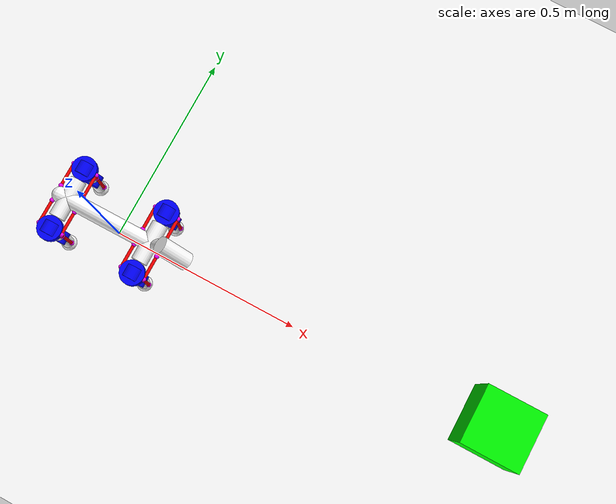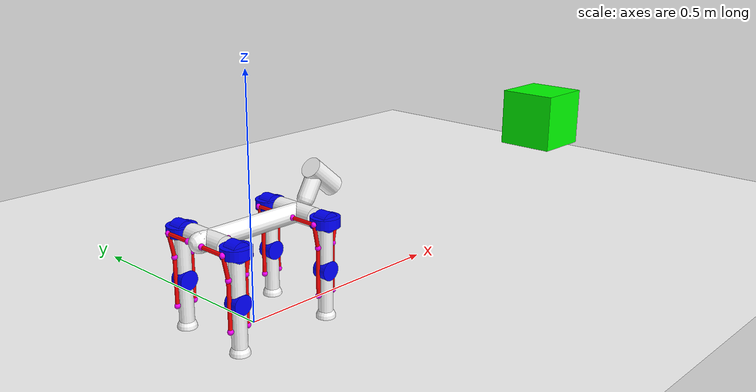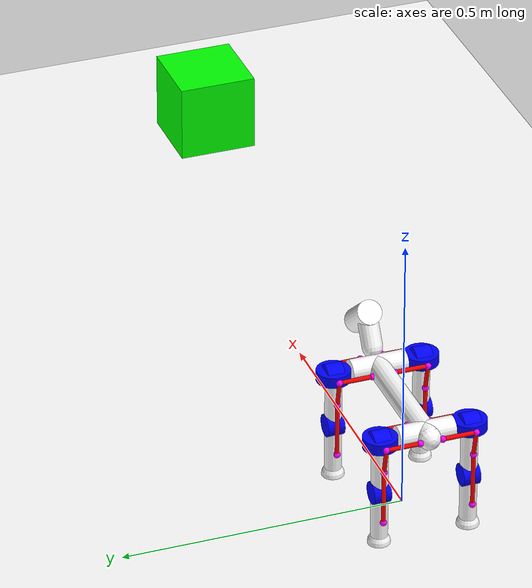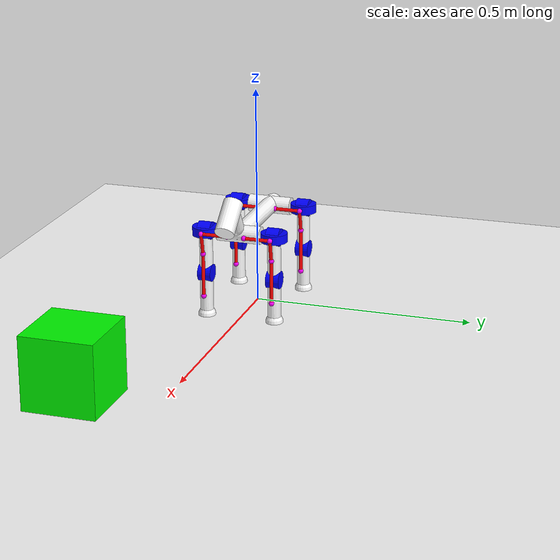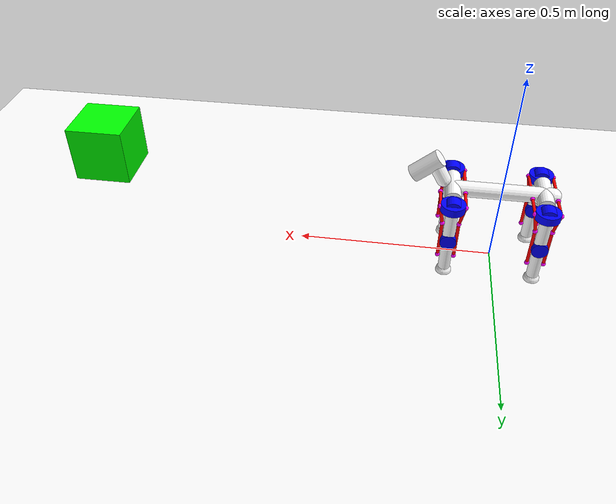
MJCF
<?xml version="1.0" encoding="utf-8"?>
<!--
@date 08.26.2025
@author t_kondo@cc.tuat.ac.jp
-->

<mujoco model="virtual creature">

  <option timestep="0.01" integrator="Euler" gravity="0 0 -9.8"/>

  <visual>
    <global elevation="-10"/>
  </visual>

  <default>
    <geom rgba="1 1 1 1"/>
    <site rgba="1 0 1 1" size="0.006"/>
    <tendon rgba="1 0 0 1" width="0.004"/>
    <joint limited="true" stiffness="6" damping="0.2"/>
    <motor ctrlrange="-1 1" ctrllimited="true"/>
    <muscle ctrlrange="0 1" ctrllimited="true"/>
  </default>

  <asset>
    <texture name="grid" type="2d" builtin="checker" width="256" height="256" rgb2="0.2 0.2 0.2" rgb1="0 0 0"/>
    <material name="grid" texture="grid" texrepeat="5 5" texuniform="true" reflectance=".1"/>
  </asset>

  <worldbody>

    <!-- 地面 -->
    <geom name="ground" type="plane" size="5 5 0.05" pos="0 0 0" material="grid" friction="1"/>

    <!-- カメラ -->
    <camera name="Above" pos="0 0 2" xyaxes="1 0 0 0 1 0"/>
    <camera name="Side" pos="0 -2 .2" xyaxes="1 0 0 0 .02 .97"/>

    <!-- 光源 -->
    <light directional="true" diffuse=".8 .8 .8" specular=".2 .2 .2" pos="0 0 5" dir="0 0 -1"/>

    <!-- Obstacle -->
    <body name="obstacle">
      <geom name = "obstacle" type="box" size="0.07 0.07 0.07" pos="1 0 0.25" mass="0.1" rgba="0 1 0 1"/>
      <freejoint/>
    </body>

    <!-- Quad robot -->
    <body name="quadbot" pos="0 0 0.2">
      <freejoint/>

      <!-- Head and Neck -->
      <geom name="neck" type="capsule"  pos="0.16 0 0.048" euler="0 30 0" size=".018 0.03" mass="0.01"/>
      <geom name="head" type="cylinder" pos="0.19 0 0.058" euler="0 -50 0" size=".022 0.04" mass="0.5"/>

      <!-- Backbone -->
      <geom name="backbone" type="capsule" euler="0 90 0" size=".02 0.12" mass="2.0"/>

      <site name="fle0" pos="0.09 0.02 0" />
      <site name="flf0" pos="0.15 0.02 0" />
      <site name="fre0" pos="0.09 -0.02 0" />
      <site name="frf0" pos="0.15 -0.02 0" />

      <site name="ble0" pos="-0.07 0.02 0" />
      <site name="blf0" pos="-0.13 0.02 0" />
      <site name="bre0" pos="-0.07 -0.02 0" />
      <site name="brf0" pos="-0.13 -0.02 0" />

    <!-- Front Shoulder -->
      <body name="front_shoulder" pos="0.12 0 0">
	<geom name="front_shoulder_geom" type="cylinder" euler="90 0 0" size=".02 .05" mass="0.1"/>

	<!-- 左前脚 -->
	<body name="front_left_shoulder>" pos="0 0.08 0">
	  <joint name="front_left_upperarm_joint" type="hinge" pos="0 0 0" axis="0 0 1" range="-5 5" springref="0"/>
  <geom name="front_left_shoulder_geom" type="cylinder" size="0.03 0.01" rgba="0 0 1 1"/>

	  <site name="fle1" pos="-0.03 0.0 0" />
	  <site name="flf1" pos="0.03 0.0 0" />

	  <body name="front_left_upperarm>" pos="0 0 0">
	    <joint name="front_left_shoulder_joint" type="hinge" pos="0 0 0" axis="0 1 0" range="-30 35" springref="30"/>
	    <geom name="front_left_shoulder_joint_geom" type="cylinder" euler="90 0 0" size=".02 .015" rgba="0 0 1 1"/>
	    <geom name="front_left_upperarm_geom" type="capsule" pos="0 0 -0.05" euler="0 0 0" size=".015 .05" mass="0.2"/>
	    <site name="fle2" pos="-0.02 0 -0.05" />
	    <site name="flf2" pos="0.02 0 -0.05" />
	    <site name="flx0" pos="-0.02 0 -0.11"  rgba="0 0 0 0"/>

	    <body name="front_left_forearm" pos="0 0 -0.15">
	      <joint name="front_left_forearm_joint" pos="0 0 0.05" type="hinge" axis="0 1 0" range="-65 0" springref="-60"/>
	      <geom name="front_left_elbow_joint_geom" type="cylinder" pos="0 0 0.05" euler="90 0 0" size=".02 .015" rgba="0 0 1 1"/>
	      <geom name="front_left_forearm_geom" type="capsule" euler="0 0 0" size="0.015 0.05" mass="0.2"/>
	      <site name="fle3" pos="-0.02 0 0" />
	      <site name="flf3" pos="0.02 0 0" />
	      <geom name="front_left_foot" type="sphere" pos="0 0 -0.05" size=".02" mass="0.1" friction="1"/>
	    </body>
	  </body>
	</body>

	<!-- 右前脚 -->
	<body name="front_right_shoulder>" pos="0 -0.08 0">
	  <joint name="front_right_upperarm_joint" type="hinge" pos="0 0 0" axis="0 0 1" range="-5 5" springref="0"/>
	  <geom name="front_right_shoulder_geom" type="cylinder" size="0.03 0.01" rgba="0 0 1 1"/>

	  <site name="fre1" pos="-0.03 0.0 0" />
	  <site name="frf1" pos="0.03 0.0 0" />

	  <body name="front_right_upperarm>" pos="0 0 0">
	    <joint name="front_right_shoulder_joint" type="hinge" pos="0 0 0" axis="0 1 0" range="-30 35" springref="30"/>
	    <geom name="front_right_shoulder_joint_geom" type="cylinder" euler="90 0 0" size=".02 .015" rgba="0 0 1 1"/>
	    <geom name="front_right_upperarm_geom" type="capsule" pos="0 0 -0.05" euler="0 0 0" size=".015 .05" mass="0.2"/>
	    <site name="fre2" pos="-0.02 0 -0.05" />
	    <site name="frf2" pos="0.02 0 -0.05" />
	    <site name="frx0" pos="-0.02 0 -0.11"  rgba="0 0 0 0"/>

	    <body name="front_right_forearm" pos="0 0 -0.15">
	      <joint name="front_right_forearm_joint" pos="0 0 0.05" type="hinge" axis="0 1 0" range="-65 0" springref="-60"/>
	      <geom name="front_right_elbow_joint_geom" type="cylinder" pos="0 0 0.05" euler="90 0 0" size=".02 .015" rgba="0 0 1 1"/>
	      <geom name="front_right_forearm_geom" type="capsule" euler="0 0 0" size=".015 .05" mass="0.2"/>
	      <site name="fre3" pos="-0.02 0 0" />
	      <site name="frf3" pos="0.02 0 0" />
	      <geom name="front_right_foot" type="sphere" pos="0 0 -0.05" size=".02" mass="0.1" friction="1"/>
	    </body>
	  </body>
	</body>
      </body>

      <body name="back_shoulder" pos="-0.10 0 0">
	<geom name="back_shoulder_geom" type="cylinder" euler="90 0 0" size=".02 .05" mass="0.1"/>

	<!-- 左後脚 -->
	<body name="back_left_shoulder>" pos="0 0.08 0">
	  <joint name="back_left_upperarm_joint" type="hinge" pos="0 0 0" axis="0 0 1" range="-5 5" springref="0"/>
	  <geom name="back_left_shoulder_geom" type="cylinder" size="0.03 0.01" rgba="0 0 1 1"/>

	  <site name="ble1" pos="0.03 0.0 0" />
	  <site name="blf1" pos="-0.03 0.0 0" />

	  <body name="back_left_upperarm>" pos="0 0 0">
	    <joint name="back_left_shoulder_joint" type="hinge" pos="0 0 0" axis="0 1 0" range="-35 30" springref="-30"/>
	    <geom name="back_left_shoulder_joint_geom" type="cylinder" euler="90 0 0" size=".02 .015" rgba="0 0 1 1"/>
	    <geom name="back_left_upperarm_geom" type="capsule" pos="0 0 -0.05" euler="0 0 0" size=".015 .05" mass="0.2"/>
	    <site name="ble2" pos="0.02 0 -0.05" />
	    <site name="blf2" pos="-0.02 0 -0.05" />
	    <site name="blx0" pos="0.02 0 -0.11"  rgba="0 0 0 0"/>

	    <body name="back_left_forearm" pos="0 0 -0.15">
	      <joint name="back_left_forearm_joint" pos="0 0 0.05" type="hinge" axis="0 1 0" range="0 65" springref="60"/>
	      <geom name="back_left_elbow_joint_geom" type="cylinder" pos="0 0 0.05" euler="90 0 0" size=".02 .015" rgba="0 0 1 1"/>
	      <geom name="back_left_forearm_geom" type="capsule" euler="0 0 0" size="0.015 0.05" mass="0.2"/>
	      <site name="ble3" pos="0.02 0 0" />
	      <site name="blf3" pos="-0.02 0 0" />
	      <geom name="back_left_foot" type="sphere" pos="0 0 -0.05" size="0.02" mass="0.1" friction="1"/>
	    </body>
	  </body>
	</body>

	<!-- 右後脚 -->
	<body name="back_right_shoulder>" pos="0 -0.08 0">
	  <joint name="back_right_upperarm_joint" type="hinge" pos="0 0 0" axis="0 0 1" range="-5 5" springref="0"/>
	  <geom name="back_right_shoulder_geom" type="cylinder" size="0.03 0.01" rgba="0 0 1 1"/>

	  <site name="bre1" pos="0.03 0.0 0" />
	  <site name="brf1" pos="-0.03 0.0 0" />

	  <body name="back_right_upperarm>" pos="0 0 0">
	    <joint name="back_right_shoulder_joint" type="hinge" pos="0 0 0" axis="0 1 0" range="-35 30" springref="-30"/>
	    <geom name="back_right_shoulder_joint_geom" type="cylinder" euler="90 0 0" size=".02 .015" rgba="0 0 1 1"/>
	    <geom name="back_right_upperarm_geom" type="capsule" pos="0 0 -0.05" euler="0 0 0" size=".015 0.05" mass="0.2"/>
	    <site name="bre2" pos="0.02 0 -0.05" />
	    <site name="brf2" pos="-0.02 0 -0.05" />
	    <site name="brx0" pos="0.02 0 -0.11"  rgba="0 0 0 0"/>

	    <body name="back_right_forearm" pos="0 0 -0.15">
	      <joint name="back_right_forearm_joint" pos="0 0 0.05" type="hinge" axis="0 1 0" range="0 65" springref="60"/>
	      <geom name="back_right_elbow_joint_geom" type="cylinder" pos="0 0 0.05" euler="90 0 0" size=".02 .015" rgba="0 0 1 1"/>
	      <geom name="back_right_forearm_geom" type="capsule" euler="0 0 0" size="0.015 0.05" mass="0.2"/>
	      <site name="bre3" pos="0.02 0 0" />
	      <site name="brf3" pos="-0.02 0 0" />
	      <geom name="back_right_foot" type="sphere" pos="0 0 -0.05" size="0.02" mass="0.1" friction="1"/>
	    </body>
	  </body>
	</body>
      </body>
    </body>
  </worldbody>

  <tendon>
    <!-- 左前脚-->
    <spatial name="FLF1">
      <site site="flf0"/>
      <site site="flf1"/>
    </spatial>
    <spatial name="FLE1">
      <site site="fle0"/>
      <site site="fle1"/>
    </spatial>

    <spatial name="FLF2">
      <site site="flf1"/>
      <site site="flf2"/>
    </spatial>
    <spatial name="FLE2">
      <site site="fle1"/>
      <site site="fle2"/>
    </spatial>

    <spatial name="FLF3">
      <site site="flf2"/>
      <site site="flf3"/>
    </spatial>
    <spatial name="FLE3">
      <site site="fle2"/>
      <geom geom="front_left_elbow_joint_geom" sidesite="flx0"/>
      <site site="fle3"/>
    </spatial>

    <!-- 右前脚-->
    <spatial name="FRF1">
      <site site="frf0"/>
      <site site="frf1"/>
    </spatial>
    <spatial name="FRE1">
      <site site="fre0"/>
      <site site="fre1"/>
    </spatial>

    <spatial name="FRF2">
      <site site="frf1"/>
      <site site="frf2"/>
    </spatial>

    <spatial name="FRE2">
      <site site="fre1"/>
      <site site="fre2"/>
    </spatial>

    <spatial name="FRF3">
      <site site="frf2"/>
      <site site="frf3"/>
    </spatial>
    <spatial name="FRE3">
      <site site="fre2"/>
      <geom geom="front_right_elbow_joint_geom" sidesite="frx0"/>
      <site site="fre3"/>
    </spatial>

    <!-- 左後脚-->
    <spatial name="BLF1">
      <site site="blf0"/>
      <site site="blf1"/>
    </spatial>
    <spatial name="BLE1">
      <site site="ble0"/>
      <site site="ble1"/>
    </spatial>

    <spatial name="BLF2">
      <site site="blf1"/>
      <site site="blf2"/>
    </spatial>
    <spatial name="BLE2">
      <site site="ble1"/>
      <site site="ble2"/>
    </spatial>

    <spatial name="BLF3">
      <site site="blf2"/>
      <site site="blf3"/>
    </spatial>
    <spatial name="BLE3">
      <site site="ble2"/>
      <geom geom="back_left_elbow_joint_geom" sidesite="blx0"/>
      <site site="ble3"/>
    </spatial>

    <!-- 右後脚-->
    <spatial name="BRF1">
      <site site="brf0"/>
      <site site="brf1"/>
    </spatial>
    <spatial name="BRE1">
      <site site="bre0"/>
      <site site="bre1"/>
    </spatial>

    <spatial name="BRF2">
      <site site="brf1"/>
      <site site="brf2"/>
    </spatial>

    <spatial name="BRE2">
      <site site="bre1"/>
      <site site="bre2"/>
    </spatial>

    <spatial name="BRF3">
      <site site="brf2"/>
      <site site="brf3"/>
    </spatial>
    <spatial name="BRE3">
      <site site="bre2"/>
      <geom geom="back_right_elbow_joint_geom" sidesite="brx0"/>
      <site site="bre3"/>
    </spatial>

  </tendon>

  <actuator>
    <muscle name="FLF1" tendon="FLF1" force="125" lengthrange="0 10"/>
    <muscle name="FLE1" tendon="FLE1" force="125" lengthrange="0 10"/>
    <muscle name="FLF2" tendon="FLF2" force="125" lengthrange="0 10"/>
    <muscle name="FLE2" tendon="FLE2" force="125" lengthrange="0 10"/>
    <muscle name="FLF3" tendon="FLF3" force="125" lengthrange="0 10"/>
    <muscle name="FLE3" tendon="FLE3" force="125" lengthrange="0 10"/>

    <muscle name="FRF1" tendon="FRF1" force="125" lengthrange="0 10"/>
    <muscle name="FRE1" tendon="FRE1" force="125" lengthrange="0 10"/>
    <muscle name="FRF2" tendon="FRF2" force="125" lengthrange="0 10"/>
    <muscle name="FRE2" tendon="FRE2" force="125" lengthrange="0 10"/>
    <muscle name="FRF3" tendon="FRF3" force="125" lengthrange="0 10"/>
    <muscle name="FRE3" tendon="FRE3" force="125" lengthrange="0 10"/>

    <muscle name="BLF1" tendon="BLF1" force="125" lengthrange="0 10"/>
    <muscle name="BLE1" tendon="BLE1" force="125" lengthrange="0 10"/>
    <muscle name="BLF2" tendon="BLF2" force="125" lengthrange="0 10"/>
    <muscle name="BLE2" tendon="BLE2" force="125" lengthrange="0 10"/>
    <muscle name="BLF3" tendon="BLF3" force="125" lengthrange="0 10"/>
    <muscle name="BLE3" tendon="BLE3" force="125" lengthrange="0 10"/>

    <muscle name="BRF1" tendon="BRF1" force="125" lengthrange="0 10"/>
    <muscle name="BRE1" tendon="BRE1" force="125" lengthrange="0 10"/>
    <muscle name="BRF2" tendon="BRF2" force="125" lengthrange="0 10"/>
    <muscle name="BRE2" tendon="BRE2" force="125" lengthrange="0 10"/>
    <muscle name="BRF3" tendon="BRF3" force="125" lengthrange="0 10"/>
    <muscle name="BRE3" tendon="BRE3" force="125" lengthrange="0 10"/>
</actuator>

</mujoco>
